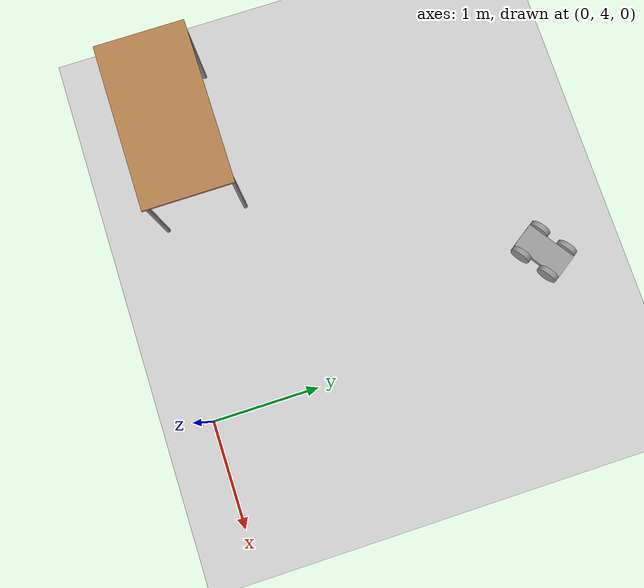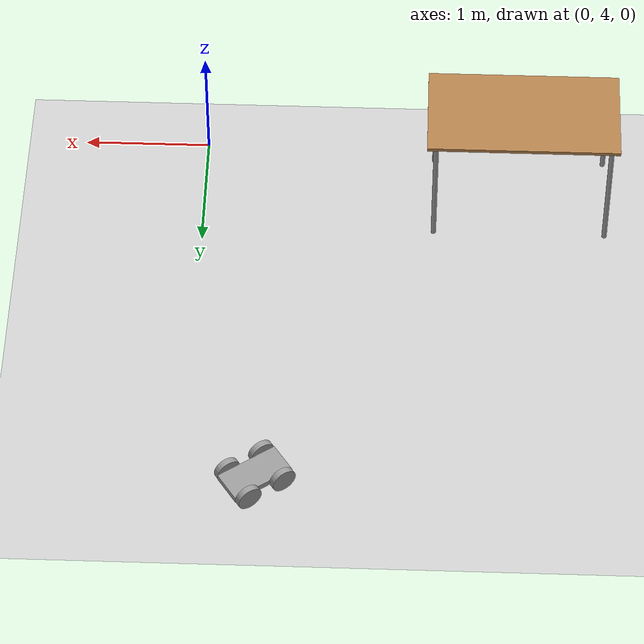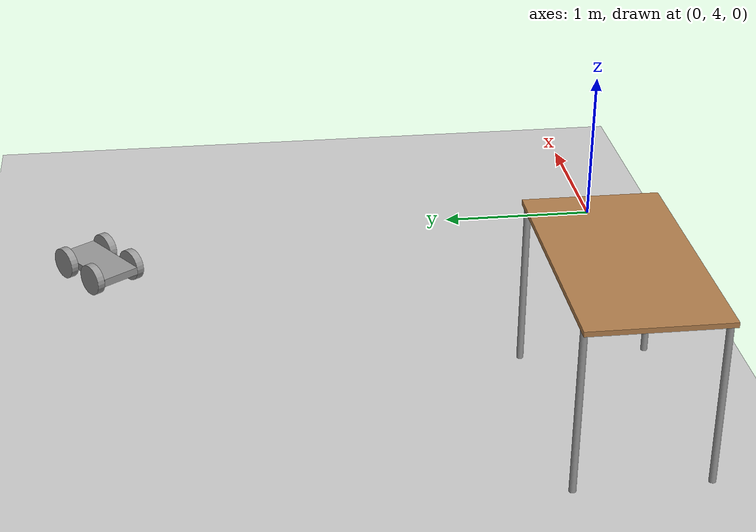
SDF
<sdf version="1.6">
 <world name="default">
  <model name="ground_plane">
   <static>1</static>
   <link name="link">
    <collision name="collision">
     <geometry><plane><normal>0 0 1</normal><size>100 100</size></plane></geometry>
     <surface>
      <contact><collide_bitmask>65535</collide_bitmask></contact>
      <friction><ode><mu>100</mu><mu2>50</mu2></ode></friction>
     </surface>
    </collision>
    <visual name="visual">
     <cast_shadows>0</cast_shadows>
     <geometry><plane><normal>0 0 1</normal><size>100 100</size></plane></geometry>
     <material>
      <script><uri>file://media/materials/scripts/gazebo.material</uri><name>Gazebo/Grey</name></script>
     </material>
    </visual>
   </link>
  </model>
  <model name="table">
   <static>1</static>
   <link name="link">
    <collision name="surface">
     <pose>0 0 1 0 -0 0</pose>
     <geometry><box><size>1.5 0.8 0.03</size></box></geometry>
     <surface><friction><ode><mu>0.6</mu><mu2>0.6</mu2></ode></friction></surface>
    </collision>
    <visual name="visual1">
     <pose>0 0 1 0 -0 0</pose>
     <geometry><box><size>1.5 0.8 0.03</size></box></geometry>
     <material>
      <script><uri>file://media/materials/scripts/gazebo.material</uri><name>Gazebo/Wood</name></script>
     </material>
    </visual>
    <collision name="front_left_leg">
     <pose>0.68 0.38 0.5 0 -0 0</pose>
     <geometry><cylinder><radius>0.02</radius><length>1</length></cylinder></geometry>
    </collision>
    <visual name="front_left_leg">
     <pose>0.68 0.38 0.5 0 -0 0</pose>
     <geometry><cylinder><radius>0.02</radius><length>1</length></cylinder></geometry>
     <material>
      <script><uri>file://media/materials/scripts/gazebo.material</uri><name>Gazebo/Grey</name></script>
     </material>
    </visual>
    <collision name="front_right_leg">
     <pose>0.68 -0.38 0.5 0 -0 0</pose>
     <geometry><cylinder><radius>0.02</radius><length>1</length></cylinder></geometry>
    </collision>
    <visual name="front_right_leg">
     <pose>0.68 -0.38 0.5 0 -0 0</pose>
     <geometry><cylinder><radius>0.02</radius><length>1</length></cylinder></geometry>
     <material>
      <script><uri>file://media/materials/scripts/gazebo.material</uri><name>Gazebo/Grey</name></script>
     </material>
    </visual>
    <collision name="back_right_leg">
     <pose>-0.68 -0.38 0.5 0 -0 0</pose>
     <geometry><cylinder><radius>0.02</radius><length>1</length></cylinder></geometry>
    </collision>
    <visual name="back_right_leg">
     <pose>-0.68 -0.38 0.5 0 -0 0</pose>
     <geometry><cylinder><radius>0.02</radius><length>1</length></cylinder></geometry>
     <material>
      <script><uri>file://media/materials/scripts/gazebo.material</uri><name>Gazebo/Grey</name></script>
     </material>
    </visual>
    <collision name="back_left_leg">
     <pose>-0.68 0.38 0.5 0 -0 0</pose>
     <geometry><cylinder><radius>0.02</radius><length>1</length></cylinder></geometry>
    </collision>
    <visual name="back_left_leg">
     <pose>-0.68 0.38 0.5 0 -0 0</pose>
     <geometry><cylinder><radius>0.02</radius><length>1</length></cylinder></geometry>
     <material>
      <script><uri>file://media/materials/scripts/gazebo.material</uri><name>Gazebo/Grey</name></script>
     </material>
    </visual>
   </link>
   <pose>-2.52101 4.48364 0 0 -0 0</pose>
  </model>
  <model name="4_wheeled_platform_clone">
   <link name="link_2">
    <inertial>
     <mass>1</mass>
     <inertia>
      <ixx>0.166667</ixx>
      <ixy>0</ixy>
      <ixz>0</ixz>
      <iyy>0.166667</iyy>
      <iyz>0</iyz>
      <izz>0.166667</izz>
     </inertia>
    </inertial>
    <pose>0.211313 0.477903 0 0 -0 0</pose>
    <visual name="visual">
     <geometry><box><size>0.5 0.25 0.05</size></box></geometry>
     <material>
      <lighting>1</lighting>
      <script><uri>file://media/materials/scripts/gazebo.material</uri><name>Gazebo/Grey</name></script>
      <shader type="vertex"><normal_map>__default__</normal_map></shader>
      <ambient>0.3 0.3 0.3 1</ambient>
      <diffuse>0.7 0.7 0.7 1</diffuse>
      <specular>0.01 0.01 0.01 1</specular>
      <emissive>0 0 0 1</emissive>
     </material>
    </visual>
    <collision name="collision">
     <geometry><box><size>0.5 0.25 0.05</size></box></geometry>
     <surface>
      <friction>
       <ode><mu>1</mu><mu2>1</mu2><fdir1>0 0 0</fdir1><slip1>0</slip1><slip2>0</slip2></ode>
       <torsional>
        <coefficient>1</coefficient>
        <patch_radius>0</patch_radius>
        <surface_radius>0</surface_radius>
        <use_patch_radius>1</use_patch_radius>
        <ode><slip>0</slip></ode>
       </torsional>
      </friction>
      <bounce><restitution_coefficient>0</restitution_coefficient><threshold>1e+06</threshold></bounce>
      <contact>
       <collide_without_contact>0</collide_without_contact>
       <collide_without_contact_bitmask>1</collide_without_contact_bitmask>
       <collide_bitmask>1</collide_bitmask>
       <ode>
        <soft_cfm>0</soft_cfm>
        <soft_erp>0.2</soft_erp>
        <kp>1e+13</kp>
        <kd>1</kd>
        <max_vel>0.01</max_vel>
        <min_depth>0</min_depth>
       </ode>
       <bullet>
        <split_impulse>1</split_impulse>
        <split_impulse_penetration_threshold>-0.01</split_impulse_penetration_threshold>
        <soft_cfm>0</soft_cfm>
        <soft_erp>0.2</soft_erp>
        <kp>1e+13</kp>
        <kd>1</kd>
       </bullet>
      </contact>
     </surface>
    </collision>
   </link>
   <link name="link_3">
    <inertial>
     <mass>1</mass>
     <inertia><ixx>0.145833</ixx><ixy>0</ixy><ixz>0</ixz><iyy>0.145833</iyy><iyz>0</iyz><izz>0.125</izz></inertia>
    </inertial>
    <pose>0.061313 0.327903 0 1.5707 -0 0</pose>
    <visual name="visual">
     <geometry><cylinder><radius>0.1</radius><length>0.05</length></cylinder></geometry>
     <material>
      <lighting>1</lighting>
      <script><uri>file://media/materials/scripts/gazebo.material</uri><name>Gazebo/Grey</name></script>
      <shader type="vertex"><normal_map>__default__</normal_map></shader>
      <ambient>0.3 0.3 0.3 1</ambient>
      <diffuse>0.7 0.7 0.7 1</diffuse>
      <specular>0.01 0.01 0.01 1</specular>
      <emissive>0 0 0 1</emissive>
     </material>
    </visual>
    <collision name="collision">
     <geometry><cylinder><radius>0.1</radius><length>0.05</length></cylinder></geometry>
     <surface>
      <friction>
       <ode><mu>1</mu><mu2>1</mu2><fdir1>0 0 0</fdir1><slip1>0</slip1><slip2>0</slip2></ode>
       <torsional>
        <coefficient>1</coefficient>
        <patch_radius>0</patch_radius>
        <surface_radius>0</surface_radius>
        <use_patch_radius>1</use_patch_radius>
        <ode><slip>0</slip></ode>
       </torsional>
      </friction>
      <bounce><restitution_coefficient>0</restitution_coefficient><threshold>1e+06</threshold></bounce>
      <contact>
       <collide_without_contact>0</collide_without_contact>
       <collide_without_contact_bitmask>1</collide_without_contact_bitmask>
       <collide_bitmask>1</collide_bitmask>
       <ode>
        <soft_cfm>0</soft_cfm>
        <soft_erp>0.2</soft_erp>
        <kp>1e+13</kp>
        <kd>1</kd>
        <max_vel>0.01</max_vel>
        <min_depth>0</min_depth>
       </ode>
       <bullet>
        <split_impulse>1</split_impulse>
        <split_impulse_penetration_threshold>-0.01</split_impulse_penetration_threshold>
        <soft_cfm>0</soft_cfm>
        <soft_erp>0.2</soft_erp>
        <kp>1e+13</kp>
        <kd>1</kd>
       </bullet>
      </contact>
     </surface>
    </collision>
   </link>
   <link name="link_3_clone">
    <inertial>
     <mass>1</mass>
     <inertia><ixx>0.145833</ixx><ixy>0</ixy><ixz>0</ixz><iyy>0.145833</iyy><iyz>0</iyz><izz>0.125</izz></inertia>
    </inertial>
    <pose>0.061313 0.627903 0 1.5707 -0 0</pose>
    <visual name="visual">
     <geometry><cylinder><radius>0.1</radius><length>0.05</length></cylinder></geometry>
     <material>
      <lighting>1</lighting>
      <script><uri>file://media/materials/scripts/gazebo.material</uri><name>Gazebo/Grey</name></script>
      <shader type="vertex"><normal_map>__default__</normal_map></shader>
      <ambient>0.3 0.3 0.3 1</ambient>
      <diffuse>0.7 0.7 0.7 1</diffuse>
      <specular>0.01 0.01 0.01 1</specular>
      <emissive>0 0 0 1</emissive>
     </material>
    </visual>
    <collision name="collision">
     <geometry><cylinder><radius>0.1</radius><length>0.05</length></cylinder></geometry>
     <surface>
      <friction>
       <ode><mu>1</mu><mu2>1</mu2><fdir1>0 0 0</fdir1><slip1>0</slip1><slip2>0</slip2></ode>
       <torsional>
        <coefficient>1</coefficient>
        <patch_radius>0</patch_radius>
        <surface_radius>0</surface_radius>
        <use_patch_radius>1</use_patch_radius>
        <ode><slip>0</slip></ode>
       </torsional>
      </friction>
      <bounce><restitution_coefficient>0</restitution_coefficient><threshold>1e+06</threshold></bounce>
      <contact>
       <collide_without_contact>0</collide_without_contact>
       <collide_without_contact_bitmask>1</collide_without_contact_bitmask>
       <collide_bitmask>1</collide_bitmask>
       <ode>
        <soft_cfm>0</soft_cfm>
        <soft_erp>0.2</soft_erp>
        <kp>1e+13</kp>
        <kd>1</kd>
        <max_vel>0.01</max_vel>
        <min_depth>0</min_depth>
       </ode>
       <bullet>
        <split_impulse>1</split_impulse>
        <split_impulse_penetration_threshold>-0.01</split_impulse_penetration_threshold>
        <soft_cfm>0</soft_cfm>
        <soft_erp>0.2</soft_erp>
        <kp>1e+13</kp>
        <kd>1</kd>
       </bullet>
      </contact>
     </surface>
    </collision>
   </link>
   <link name="link_3_clone_0">
    <inertial>
     <mass>1</mass>
     <inertia><ixx>0.145833</ixx><ixy>0</ixy><ixz>0</ixz><iyy>0.145833</iyy><iyz>0</iyz><izz>0.125</izz></inertia>
    </inertial>
    <pose>0.361313 0.627903 0 1.5707 -0 0</pose>
    <visual name="visual">
     <geometry><cylinder><radius>0.1</radius><length>0.05</length></cylinder></geometry>
     <material>
      <lighting>1</lighting>
      <script><uri>file://media/materials/scripts/gazebo.material</uri><name>Gazebo/Grey</name></script>
      <shader type="vertex"><normal_map>__default__</normal_map></shader>
      <ambient>0.3 0.3 0.3 1</ambient>
      <diffuse>0.7 0.7 0.7 1</diffuse>
      <specular>0.01 0.01 0.01 1</specular>
      <emissive>0 0 0 1</emissive>
     </material>
    </visual>
    <collision name="collision">
     <geometry><cylinder><radius>0.1</radius><length>0.05</length></cylinder></geometry>
     <surface>
      <friction>
       <ode><mu>1</mu><mu2>1</mu2><fdir1>0 0 0</fdir1><slip1>0</slip1><slip2>0</slip2></ode>
       <torsional>
        <coefficient>1</coefficient>
        <patch_radius>0</patch_radius>
        <surface_radius>0</surface_radius>
        <use_patch_radius>1</use_patch_radius>
        <ode><slip>0</slip></ode>
       </torsional>
      </friction>
      <bounce><restitution_coefficient>0</restitution_coefficient><threshold>1e+06</threshold></bounce>
      <contact>
       <collide_without_contact>0</collide_without_contact>
       <collide_without_contact_bitmask>1</collide_without_contact_bitmask>
       <collide_bitmask>1</collide_bitmask>
       <ode>
        <soft_cfm>0</soft_cfm>
        <soft_erp>0.2</soft_erp>
        <kp>1e+13</kp>
        <kd>1</kd>
        <max_vel>0.01</max_vel>
        <min_depth>0</min_depth>
       </ode>
       <bullet>
        <split_impulse>1</split_impulse>
        <split_impulse_penetration_threshold>-0.01</split_impulse_penetration_threshold>
        <soft_cfm>0</soft_cfm>
        <soft_erp>0.2</soft_erp>
        <kp>1e+13</kp>
        <kd>1</kd>
       </bullet>
      </contact>
     </surface>
    </collision>
   </link>
   <link name="link_3_clone_1">
    <inertial>
     <mass>1</mass>
     <inertia><ixx>0.145833</ixx><ixy>0</ixy><ixz>0</ixz><iyy>0.145833</iyy><iyz>0</iyz><izz>0.125</izz></inertia>
    </inertial>
    <pose>0.361313 0.327903 0 1.5707 -0 0</pose>
    <visual name="visual">
     <geometry><cylinder><radius>0.1</radius><length>0.05</length></cylinder></geometry>
     <material>
      <lighting>1</lighting>
      <script><uri>file://media/materials/scripts/gazebo.material</uri><name>Gazebo/Grey</name></script>
      <shader type="vertex"><normal_map>__default__</normal_map></shader>
      <ambient>0.3 0.3 0.3 1</ambient>
      <diffuse>0.7 0.7 0.7 1</diffuse>
      <specular>0.01 0.01 0.01 1</specular>
      <emissive>0 0 0 1</emissive>
     </material>
    </visual>
    <collision name="collision">
     <geometry><cylinder><radius>0.1</radius><length>0.05</length></cylinder></geometry>
     <surface>
      <friction>
       <ode><mu>1</mu><mu2>1</mu2><fdir1>0 0 0</fdir1><slip1>0</slip1><slip2>0</slip2></ode>
       <torsional>
        <coefficient>1</coefficient>
        <patch_radius>0</patch_radius>
        <surface_radius>0</surface_radius>
        <use_patch_radius>1</use_patch_radius>
        <ode><slip>0</slip></ode>
       </torsional>
      </friction>
      <bounce><restitution_coefficient>0</restitution_coefficient><threshold>1e+06</threshold></bounce>
      <contact>
       <collide_without_contact>0</collide_without_contact>
       <collide_without_contact_bitmask>1</collide_without_contact_bitmask>
       <collide_bitmask>1</collide_bitmask>
       <ode>
        <soft_cfm>0</soft_cfm>
        <soft_erp>0.2</soft_erp>
        <kp>1e+13</kp>
        <kd>1</kd>
        <max_vel>0.01</max_vel>
        <min_depth>0</min_depth>
       </ode>
       <bullet>
        <split_impulse>1</split_impulse>
        <split_impulse_penetration_threshold>-0.01</split_impulse_penetration_threshold>
        <soft_cfm>0</soft_cfm>
        <soft_erp>0.2</soft_erp>
        <kp>1e+13</kp>
        <kd>1</kd>
       </bullet>
      </contact>
     </surface>
    </collision>
   </link>
   <joint name="link_2_JOINT_6" type="revolute">
    <parent>link_2</parent>
    <child>link_3</child>
    <axis>
     <xyz>0 0 1</xyz>
     <use_parent_model_frame>0</use_parent_model_frame>
     <limit>
      <lower>-1.79769e+308</lower>
      <upper>1.79769e+308</upper>
      <effort>-1</effort>
      <velocity>-1</velocity>
     </limit>
     <dynamics>
      <spring_reference>0</spring_reference>
      <spring_stiffness>0</spring_stiffness>
      <damping>0</damping>
     </dynamics>
    </axis>
    <physics>
     <ode><limit><cfm>0</cfm><erp>0.2</erp></limit><suspension><cfm>0</cfm><erp>0.2</erp></suspension></ode>
    </physics>
   </joint>
   <joint name="link_2_JOINT_7" type="revolute">
    <parent>link_2</parent>
    <child>link_3_clone</child>
    <axis>
     <xyz>0 0 1</xyz>
     <use_parent_model_frame>0</use_parent_model_frame>
     <limit>
      <lower>-1.79769e+308</lower>
      <upper>1.79769e+308</upper>
      <effort>-1</effort>
      <velocity>-1</velocity>
     </limit>
     <dynamics>
      <spring_reference>0</spring_reference>
      <spring_stiffness>0</spring_stiffness>
      <damping>0</damping>
     </dynamics>
    </axis>
    <physics>
     <ode><limit><cfm>0</cfm><erp>0.2</erp></limit><suspension><cfm>0</cfm><erp>0.2</erp></suspension></ode>
    </physics>
   </joint>
   <joint name="link_2_JOINT_8" type="revolute">
    <parent>link_2</parent>
    <child>link_3_clone_0</child>
    <axis>
     <xyz>1 0 0</xyz>
     <use_parent_model_frame>0</use_parent_model_frame>
     <limit>
      <lower>-1.79769e+308</lower>
      <upper>1.79769e+308</upper>
      <effort>-1</effort>
      <velocity>-1</velocity>
     </limit>
     <dynamics>
      <spring_reference>0</spring_reference>
      <spring_stiffness>0</spring_stiffness>
      <damping>0</damping>
     </dynamics>
    </axis>
    <physics>
     <ode><limit><cfm>0</cfm><erp>0.2</erp></limit><suspension><cfm>0</cfm><erp>0.2</erp></suspension></ode>
    </physics>
   </joint>
   <joint name="link_2_JOINT_9" type="revolute">
    <parent>link_2</parent>
    <child>link_3_clone_1</child>
    <axis>
     <xyz>1 0 0</xyz>
     <use_parent_model_frame>0</use_parent_model_frame>
     <limit>
      <lower>-1.79769e+308</lower>
      <upper>1.79769e+308</upper>
      <effort>-1</effort>
      <velocity>-1</velocity>
     </limit>
     <dynamics>
      <spring_reference>0</spring_reference>
      <spring_stiffness>0</spring_stiffness>
      <damping>0</damping>
     </dynamics>
    </axis>
    <physics>
     <ode><limit><cfm>0</cfm><erp>0.2</erp></limit><suspension><cfm>0</cfm><erp>0.2</erp></suspension></ode>
    </physics>
   </joint>
   <static>0</static>
   <pose>-0.443659 6.85754 0.100003 0 8e-06 0.607435</pose>
  </model>
 </world>
</sdf>
